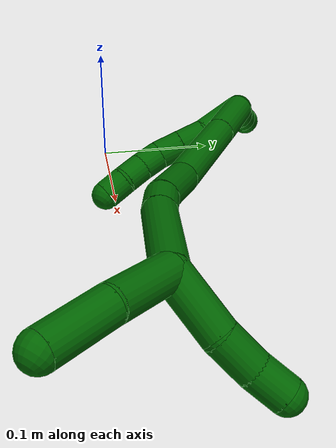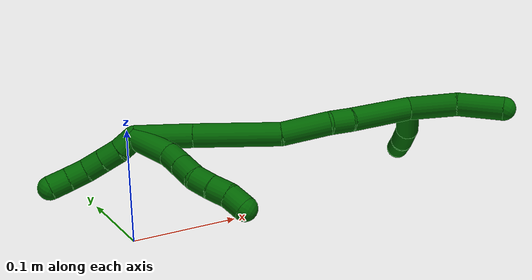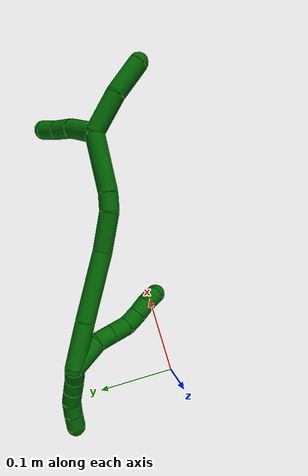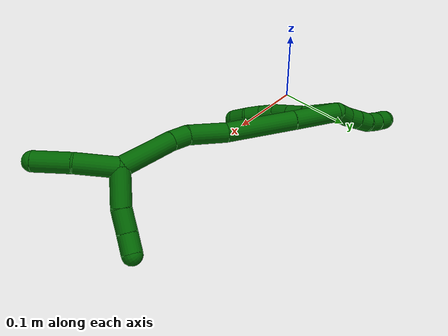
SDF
<sdf version="1.7">
 <world name="default">
  <model name="photoneo_s_sensor">
   <static>1</static>
   <pose>0 0 2 1.57079 1.57079 3.14159</pose>
   <link name="link">
    <inertial><mass>0.1</mass></inertial>
    <sensor name="sensor" type="depth">
     <update_rate>30</update_rate>
     <camera>
      <horizontal_fov>1.22</horizontal_fov>
      <image><width>1920</width><height>1200</height><format>B8G8R8</format></image>
      <clip><near>0.1</near><far>4</far></clip>
      <depth_camera><output>points</output></depth_camera>
     </camera>
     <plugin name="camera_plugin" filename="libgazebo_ros_depth_camera.so">
      <baseline>0.2</baseline>
      <alwaysOn>1</alwaysOn>
      <updateRate>0.0</updateRate>
      <cameraName>camera_ir</cameraName>
      <imageTopicName>/camera/color/image_raw</imageTopicName>
      <cameraInfoTopicName>/camera/color/camera_info</cameraInfoTopicName>
      <depthImageTopicName>/camera/depth/image_raw</depthImageTopicName>
      <depthImageCameraInfoTopicName>/camera/depth/camera_info</depthImageCameraInfoTopicName>
      <pointCloudTopicName>/camera/depth/points</pointCloudTopicName>
      <frameName>fr_optical</frameName>
      <pointCloudCutoff>0.1</pointCloudCutoff>
      <pointCloudCutoffMax>2.0</pointCloudCutoffMax>
      <distortionK1>0</distortionK1>
      <distortionK2>0</distortionK2>
      <distortionK3>0</distortionK3>
      <distortionT1>0</distortionT1>
      <distortionT2>0</distortionT2>
      <CxPrime>0</CxPrime>
      <Cx>0</Cx>
      <Cy>0</Cy>
      <focalLength>0</focalLength>
      <hackBaseline>0</hackBaseline>
     </plugin>
    </sensor>
   </link>
  </model>
  <model name="bin">
   <static>1</static>
   <link name="bottom">
    <collision name="collision-bottom">
     <pose>0 0 -0.01 0 -0 0</pose>
     <geometry><box><size>0.8 0.6 0.02</size></box></geometry>
     <surface>
      <friction><ode><mu>100</mu><mu2>100</mu2></ode></friction>
      <contact><collide_bitmask>65535</collide_bitmask></contact>
     </surface>
    </collision>
   </link>
   <link name="west_wall">
    <collision name="collision-west_wall">
     <pose>-0.41 0 0.1 0 -0 0</pose>
     <geometry><box><size>0.02 0.6 0.2</size></box></geometry>
     <surface>
      <friction><ode><mu>100</mu><mu2>100</mu2></ode></friction>
      <contact><collide_bitmask>65535</collide_bitmask></contact>
     </surface>
    </collision>
   </link>
   <link name="east_wall">
    <collision name="collision-east_wall">
     <pose>0.41 0 0.1 0 -0 0</pose>
     <geometry><box><size>0.02 0.6 0.2</size></box></geometry>
     <surface>
      <friction><ode><mu>100</mu><mu2>100</mu2></ode></friction>
      <contact><collide_bitmask>65535</collide_bitmask></contact>
     </surface>
    </collision>
   </link>
   <link name="south_wall">
    <collision name="collision-south_wall">
     <pose>0 -0.31 0.1 0 -0 0</pose>
     <geometry><box><size>0.8 0.02 0.2</size></box></geometry>
     <surface>
      <friction><ode><mu>100</mu><mu2>100</mu2></ode></friction>
      <contact><collide_bitmask>65535</collide_bitmask></contact>
     </surface>
    </collision>
   </link>
   <link name="north_wall">
    <collision name="collision-north_wall">
     <pose>0 0.31 0.1 0 -0 0</pose>
     <geometry><box><size>0.8 0.02 0.2</size></box></geometry>
     <surface>
      <friction><ode><mu>100</mu><mu2>100</mu2></ode></friction>
      <contact><collide_bitmask>65535</collide_bitmask></contact>
     </surface>
    </collision>
   </link>
  </model>
  <model name="6">
   <static>0</static>
   <link name="6">
    <collision name="collision-cylinder-e_1_2_8">
     <pose>-0.0062 -0.003976 -0.02101 2.95454 -0.282224 -1.97443</pose>
     <geometry><cylinder><radius>0.0125</radius><length>0.044527</length></cylinder></geometry>
     <surface>
      <friction><ode><mu>1.16</mu><mu2>1.16</mu2><slip1>0</slip1><slip2>0</slip2></ode></friction>
      <contact><ode><kp>1e+06</kp><kd>1</kd><max_vel>0</max_vel><min_depth>0.001</min_depth></ode></contact>
     </surface>
    </collision>
    <visual name="visual-cylinder-e_1_2_8">
     <pose>-0.0062 -0.003976 -0.02101 2.95454 -0.282224 -1.97443</pose>
     <geometry><cylinder><radius>0.0125</radius><length>0.044527</length></cylinder></geometry>
     <material><ambient>0 0.392157 0.003922 1</ambient></material>
    </visual>
    <collision name="collision-cylinder-e_2_8_9">
     <pose>-0.018679 -0.008261 -0.051294 3.10836 -0.594838 -3.03326</pose>
     <geometry><cylinder><radius>0.0125</radius><length>0.022408</length></cylinder></geometry>
     <surface>
      <friction><ode><mu>1.16</mu><mu2>1.16</mu2><slip1>0</slip1><slip2>0</slip2></ode></friction>
      <contact><ode><kp>1e+06</kp><kd>1</kd><max_vel>0</max_vel><min_depth>0.001</min_depth></ode></contact>
     </surface>
    </collision>
    <visual name="visual-cylinder-e_2_8_9">
     <pose>-0.018679 -0.008261 -0.051294 3.10836 -0.594838 -3.03326</pose>
     <geometry><cylinder><radius>0.0125</radius><length>0.022408</length></cylinder></geometry>
     <material><ambient>0 0.392157 0.003922 1</ambient></material>
    </visual>
    <collision name="collision-cylinder-e_3_9_10">
     <pose>-0.03132 -0.008812 -0.069853 3.11549 -0.600609 -3.05734</pose>
     <geometry><cylinder><radius>0.0125</radius><length>0.022516</length></cylinder></geometry>
     <surface>
      <friction><ode><mu>1.16</mu><mu2>1.16</mu2><slip1>0</slip1><slip2>0</slip2></ode></friction>
      <contact><ode><kp>1e+06</kp><kd>1</kd><max_vel>0</max_vel><min_depth>0.001</min_depth></ode></contact>
     </surface>
    </collision>
    <visual name="visual-cylinder-e_3_9_10">
     <pose>-0.03132 -0.008812 -0.069853 3.11549 -0.600609 -3.05734</pose>
     <geometry><cylinder><radius>0.0125</radius><length>0.022516</length></cylinder></geometry>
     <material><ambient>0 0.392157 0.003922 1</ambient></material>
    </visual>
    <collision name="collision-cylinder-e_4_10_11">
     <pose>-0.040902 -0.010504 -0.088634 2.99008 -0.32343 -2.27063</pose>
     <geometry><cylinder><radius>0.0125</radius><length>0.020262</length></cylinder></geometry>
     <surface>
      <friction><ode><mu>1.16</mu><mu2>1.16</mu2><slip1>0</slip1><slip2>0</slip2></ode></friction>
      <contact><ode><kp>1e+06</kp><kd>1</kd><max_vel>0</max_vel><min_depth>0.001</min_depth></ode></contact>
     </surface>
    </collision>
    <visual name="visual-cylinder-e_4_10_11">
     <pose>-0.040902 -0.010504 -0.088634 2.99008 -0.32343 -2.27063</pose>
     <geometry><cylinder><radius>0.0125</radius><length>0.020262</length></cylinder></geometry>
     <material><ambient>0 0.392157 0.003922 1</ambient></material>
    </visual>
    <collision name="collision-cylinder-e_5_11_12">
     <pose>-0.046431 -0.013773 -0.107702 2.95377 -0.232698 -1.78496</pose>
     <geometry><cylinder><radius>0.0125</radius><length>0.020027</length></cylinder></geometry>
     <surface>
      <friction><ode><mu>1.16</mu><mu2>1.16</mu2><slip1>0</slip1><slip2>0</slip2></ode></friction>
      <contact><ode><kp>1e+06</kp><kd>1</kd><max_vel>0</max_vel><min_depth>0.001</min_depth></ode></contact>
     </surface>
    </collision>
    <visual name="visual-cylinder-e_5_11_12">
     <pose>-0.046431 -0.013773 -0.107702 2.95377 -0.232698 -1.78496</pose>
     <geometry><cylinder><radius>0.0125</radius><length>0.020027</length></cylinder></geometry>
     <material><ambient>0 0.392157 0.003922 1</ambient></material>
    </visual>
    <collision name="collision-cylinder-e_6_12_6">
     <pose>-0.05223 -0.015246 -0.126777 -3.10516 -0.351767 2.9373</pose>
     <geometry><cylinder><radius>0.0125</radius><length>0.02026</length></cylinder></geometry>
     <surface>
      <friction><ode><mu>1.16</mu><mu2>1.16</mu2><slip1>0</slip1><slip2>0</slip2></ode></friction>
      <contact><ode><kp>1e+06</kp><kd>1</kd><max_vel>0</max_vel><min_depth>0.001</min_depth></ode></contact>
     </surface>
    </collision>
    <visual name="visual-cylinder-e_6_12_6">
     <pose>-0.05223 -0.015246 -0.126777 -3.10516 -0.351767 2.9373</pose>
     <geometry><cylinder><radius>0.0125</radius><length>0.02026</length></cylinder></geometry>
     <material><ambient>0 0.392157 0.003922 1</ambient></material>
    </visual>
    <collision name="collision-cylinder-e_1_2_13">
     <pose>-0.002 0.009337 0.002971 -1.26269 -0.201366 0.147466</pose>
     <geometry><cylinder><radius>0.0125</radius><length>0.02</length></cylinder></geometry>
     <surface>
      <friction><ode><mu>1.16</mu><mu2>1.16</mu2><slip1>0</slip1><slip2>0</slip2></ode></friction>
      <contact><ode><kp>1e+06</kp><kd>1</kd><max_vel>0</max_vel><min_depth>0.001</min_depth></ode></contact>
     </surface>
    </collision>
    <visual name="visual-cylinder-e_1_2_13">
     <pose>-0.002 0.009337 0.002971 -1.26269 -0.201366 0.147466</pose>
     <geometry><cylinder><radius>0.0125</radius><length>0.02</length></cylinder></geometry>
     <material><ambient>0 0.392157 0.003922 1</ambient></material>
    </visual>
    <collision name="collision-cylinder-e_2_13_14">
     <pose>-0.005597 0.027388 0.01058 -1.0818 -0.160362 0.096453</pose>
     <geometry><cylinder><radius>0.0125</radius><length>0.02</length></cylinder></geometry>
     <surface>
      <friction><ode><mu>1.16</mu><mu2>1.16</mu2><slip1>0</slip1><slip2>0</slip2></ode></friction>
      <contact><ode><kp>1e+06</kp><kd>1</kd><max_vel>0</max_vel><min_depth>0.001</min_depth></ode></contact>
     </surface>
    </collision>
    <visual name="visual-cylinder-e_2_13_14">
     <pose>-0.005597 0.027388 0.01058 -1.0818 -0.160362 0.096453</pose>
     <geometry><cylinder><radius>0.0125</radius><length>0.02</length></cylinder></geometry>
     <material><ambient>0 0.392157 0.003922 1</ambient></material>
    </visual>
    <collision name="collision-cylinder-e_3_14_15">
     <pose>-0.008827 0.044796 0.019882 -1.07829 -0.164061 0.098293</pose>
     <geometry><cylinder><radius>0.0125</radius><length>0.02</length></cylinder></geometry>
     <surface>
      <friction><ode><mu>1.16</mu><mu2>1.16</mu2><slip1>0</slip1><slip2>0</slip2></ode></friction>
      <contact><ode><kp>1e+06</kp><kd>1</kd><max_vel>0</max_vel><min_depth>0.001</min_depth></ode></contact>
     </surface>
    </collision>
    <visual name="visual-cylinder-e_3_14_15">
     <pose>-0.008827 0.044796 0.019882 -1.07829 -0.164061 0.098293</pose>
     <geometry><cylinder><radius>0.0125</radius><length>0.02</length></cylinder></geometry>
     <material><ambient>0 0.392157 0.003922 1</ambient></material>
    </visual>
    <collision name="collision-cylinder-e_4_15_16">
     <pose>-0.014572 0.061166 0.029462 -1.0013 -0.423754 0.234311</pose>
     <geometry><cylinder><radius>0.0125</radius><length>0.02</length></cylinder></geometry>
     <surface>
      <friction><ode><mu>1.16</mu><mu2>1.16</mu2><slip1>0</slip1><slip2>0</slip2></ode></friction>
      <contact><ode><kp>1e+06</kp><kd>1</kd><max_vel>0</max_vel><min_depth>0.001</min_depth></ode></contact>
     </surface>
    </collision>
    <visual name="visual-cylinder-e_4_15_16">
     <pose>-0.014572 0.061166 0.029462 -1.0013 -0.423754 0.234311</pose>
     <geometry><cylinder><radius>0.0125</radius><length>0.02</length></cylinder></geometry>
     <material><ambient>0 0.392157 0.003922 1</ambient></material>
    </visual>
    <collision name="collision-cylinder-e_5_16_5">
     <pose>-0.023495 0.076064 0.039347 -0.967965 -0.501903 0.26791</pose>
     <geometry><cylinder><radius>0.0125</radius><length>0.02</length></cylinder></geometry>
     <surface>
      <friction><ode><mu>1.16</mu><mu2>1.16</mu2><slip1>0</slip1><slip2>0</slip2></ode></friction>
      <contact><ode><kp>1e+06</kp><kd>1</kd><max_vel>0</max_vel><min_depth>0.001</min_depth></ode></contact>
     </surface>
    </collision>
    <visual name="visual-cylinder-e_5_16_5">
     <pose>-0.023495 0.076064 0.039347 -0.967965 -0.501903 0.26791</pose>
     <geometry><cylinder><radius>0.0125</radius><length>0.02</length></cylinder></geometry>
     <material><ambient>0 0.392157 0.003922 1</ambient></material>
    </visual>
    <collision name="collision-cylinder-e_1_2_17">
     <pose>0.005493 -0.015639 -0.025008 2.58274 0.184112 0.62255</pose>
     <geometry><cylinder><radius>0.0125</radius><length>0.060006</length></cylinder></geometry>
     <surface>
      <friction><ode><mu>1.16</mu><mu2>1.16</mu2><slip1>0</slip1><slip2>0</slip2></ode></friction>
      <contact><ode><kp>1e+06</kp><kd>1</kd><max_vel>0</max_vel><min_depth>0.001</min_depth></ode></contact>
     </surface>
    </collision>
    <visual name="visual-cylinder-e_1_2_17">
     <pose>0.005493 -0.015639 -0.025008 2.58274 0.184112 0.62255</pose>
     <geometry><cylinder><radius>0.0125</radius><length>0.060006</length></cylinder></geometry>
     <material><ambient>0 0.392157 0.003922 1</ambient></material>
    </visual>
    <collision name="collision-cylinder-e_2_17_18">
     <pose>0.018399 -0.054453 -0.088126 2.59524 0.1647 0.572955</pose>
     <geometry><cylinder><radius>0.0125</radius><length>0.090428</length></cylinder></geometry>
     <surface>
      <friction><ode><mu>1.16</mu><mu2>1.16</mu2><slip1>0</slip1><slip2>0</slip2></ode></friction>
      <contact><ode><kp>1e+06</kp><kd>1</kd><max_vel>0</max_vel><min_depth>0.001</min_depth></ode></contact>
     </surface>
    </collision>
    <visual name="visual-cylinder-e_2_17_18">
     <pose>0.018399 -0.054453 -0.088126 2.59524 0.1647 0.572955</pose>
     <geometry><cylinder><radius>0.0125</radius><length>0.090428</length></cylinder></geometry>
     <material><ambient>0 0.392157 0.003922 1</ambient></material>
    </visual>
    <collision name="collision-cylinder-e_3_18_19">
     <pose>0.031079 -0.09484 -0.144516 2.38627 0.206759 0.511601</pose>
     <geometry><cylinder><radius>0.0125</radius><length>0.05131</length></cylinder></geometry>
     <surface>
      <friction><ode><mu>1.16</mu><mu2>1.16</mu2><slip1>0</slip1><slip2>0</slip2></ode></friction>
      <contact><ode><kp>1e+06</kp><kd>1</kd><max_vel>0</max_vel><min_depth>0.001</min_depth></ode></contact>
     </surface>
    </collision>
    <visual name="visual-cylinder-e_3_18_19">
     <pose>0.031079 -0.09484 -0.144516 2.38627 0.206759 0.511601</pose>
     <geometry><cylinder><radius>0.0125</radius><length>0.05131</length></cylinder></geometry>
     <material><ambient>0 0.392157 0.003922 1</ambient></material>
    </visual>
    <collision name="collision-cylinder-e_4_19_20">
     <pose>0.041636 -0.118333 -0.17113 2.49574 0.469217 1.24042</pose>
     <geometry><cylinder><radius>0.0125</radius><length>0.0234</length></cylinder></geometry>
     <surface>
      <friction><ode><mu>1.16</mu><mu2>1.16</mu2><slip1>0</slip1><slip2>0</slip2></ode></friction>
      <contact><ode><kp>1e+06</kp><kd>1</kd><max_vel>0</max_vel><min_depth>0.001</min_depth></ode></contact>
     </surface>
    </collision>
    <visual name="visual-cylinder-e_4_19_20">
     <pose>0.041636 -0.118333 -0.17113 2.49574 0.469217 1.24042</pose>
     <geometry><cylinder><radius>0.0125</radius><length>0.0234</length></cylinder></geometry>
     <material><ambient>0 0.392157 0.003922 1</ambient></material>
    </visual>
    <collision name="collision-cylinder-e_5_20_1">
     <pose>0.068665 -0.143414 -0.20344 2.47664 0.61972 1.49533</pose>
     <geometry><cylinder><radius>0.0125</radius><length>0.074855</length></cylinder></geometry>
     <surface>
      <friction><ode><mu>1.16</mu><mu2>1.16</mu2><slip1>0</slip1><slip2>0</slip2></ode></friction>
      <contact><ode><kp>1e+06</kp><kd>1</kd><max_vel>0</max_vel><min_depth>0.001</min_depth></ode></contact>
     </surface>
    </collision>
    <visual name="visual-cylinder-e_5_20_1">
     <pose>0.068665 -0.143414 -0.20344 2.47664 0.61972 1.49533</pose>
     <geometry><cylinder><radius>0.0125</radius><length>0.074855</length></cylinder></geometry>
     <material><ambient>0 0.392157 0.003922 1</ambient></material>
    </visual>
    <collision name="collision-cylinder-e_1_1_21">
     <pose>0.109094 -0.15064 -0.235087 -2.15614 0.931914 -1.50541</pose>
     <geometry><cylinder><radius>0.0125</radius><length>0.046568</length></cylinder></geometry>
     <surface>
      <friction><ode><mu>1.16</mu><mu2>1.16</mu2><slip1>0</slip1><slip2>0</slip2></ode></friction>
      <contact><ode><kp>1e+06</kp><kd>1</kd><max_vel>0</max_vel><min_depth>0.001</min_depth></ode></contact>
     </surface>
    </collision>
    <visual name="visual-cylinder-e_1_1_21">
     <pose>0.109094 -0.15064 -0.235087 -2.15614 0.931914 -1.50541</pose>
     <geometry><cylinder><radius>0.0125</radius><length>0.046568</length></cylinder></geometry>
     <material><ambient>0 0.392157 0.003922 1</ambient></material>
    </visual>
    <collision name="collision-cylinder-e_2_21_22">
     <pose>0.139069 -0.130377 -0.244962 -1.81915 0.899389 -1.11051</pose>
     <geometry><cylinder><radius>0.0125</radius><length>0.028822</length></cylinder></geometry>
     <surface>
      <friction><ode><mu>1.16</mu><mu2>1.16</mu2><slip1>0</slip1><slip2>0</slip2></ode></friction>
      <contact><ode><kp>1e+06</kp><kd>1</kd><max_vel>0</max_vel><min_depth>0.001</min_depth></ode></contact>
     </surface>
    </collision>
    <visual name="visual-cylinder-e_2_21_22">
     <pose>0.139069 -0.130377 -0.244962 -1.81915 0.899389 -1.11051</pose>
     <geometry><cylinder><radius>0.0125</radius><length>0.028822</length></cylinder></geometry>
     <material><ambient>0 0.392157 0.003922 1</ambient></material>
    </visual>
    <collision name="collision-cylinder-e_3_22_4">
     <pose>0.16105 -0.115714 -0.248302 -1.75878 1.05397 -1.22547</pose>
     <geometry><cylinder><radius>0.0125</radius><length>0.02461</length></cylinder></geometry>
     <surface>
      <friction><ode><mu>1.16</mu><mu2>1.16</mu2><slip1>0</slip1><slip2>0</slip2></ode></friction>
      <contact><ode><kp>1e+06</kp><kd>1</kd><max_vel>0</max_vel><min_depth>0.001</min_depth></ode></contact>
     </surface>
    </collision>
    <visual name="visual-cylinder-e_3_22_4">
     <pose>0.16105 -0.115714 -0.248302 -1.75878 1.05397 -1.22547</pose>
     <geometry><cylinder><radius>0.0125</radius><length>0.02461</length></cylinder></geometry>
     <material><ambient>0 0.392157 0.003922 1</ambient></material>
    </visual>
    <collision name="collision-cylinder-e_1_1_23">
     <pose>0.087221 -0.178021 -0.248186 2.49102 -0.121323 -0.356349</pose>
     <geometry><cylinder><radius>0.0125</radius><length>0.052589</length></cylinder></geometry>
     <surface>
      <friction><ode><mu>1.16</mu><mu2>1.16</mu2><slip1>0</slip1><slip2>0</slip2></ode></friction>
      <contact><ode><kp>1e+06</kp><kd>1</kd><max_vel>0</max_vel><min_depth>0.001</min_depth></ode></contact>
     </surface>
    </collision>
    <visual name="visual-cylinder-e_1_1_23">
     <pose>0.087221 -0.178021 -0.248186 2.49102 -0.121323 -0.356349</pose>
     <geometry><cylinder><radius>0.0125</radius><length>0.052589</length></cylinder></geometry>
     <material><ambient>0 0.392157 0.003922 1</ambient></material>
    </visual>
    <collision name="collision-cylinder-e_2_23_3">
     <pose>0.079125 -0.204322 -0.289637 2.67205 -0.208767 -0.825678</pose>
     <geometry><cylinder><radius>0.0125</radius><length>0.047411</length></cylinder></geometry>
     <surface>
      <friction><ode><mu>1.16</mu><mu2>1.16</mu2><slip1>0</slip1><slip2>0</slip2></ode></friction>
      <contact><ode><kp>1e+06</kp><kd>1</kd><max_vel>0</max_vel><min_depth>0.001</min_depth></ode></contact>
     </surface>
    </collision>
    <visual name="visual-cylinder-e_2_23_3">
     <pose>0.079125 -0.204322 -0.289637 2.67205 -0.208767 -0.825678</pose>
     <geometry><cylinder><radius>0.0125</radius><length>0.047411</length></cylinder></geometry>
     <material><ambient>0 0.392157 0.003922 1</ambient></material>
    </visual>
    <collision name="collision-sphere-3">
     <pose>0.074212 -0.214815 -0.310318 0 -0 0</pose>
     <geometry><sphere><radius>0.0125</radius></sphere></geometry>
     <surface>
      <friction><ode><mu>1.16</mu><mu2>1.16</mu2><slip1>0</slip1><slip2>0</slip2></ode></friction>
      <contact><ode><kp>1e+06</kp><kd>1</kd><max_vel>0</max_vel><min_depth>0.001</min_depth></ode></contact>
     </surface>
    </collision>
    <visual name="visual-sphere-3">
     <pose>0.074212 -0.214815 -0.310318 0 -0 0</pose>
     <geometry><sphere><radius>0.0125</radius></sphere></geometry>
     <material><ambient>0 0.392157 0.003922 1</ambient></material>
    </visual>
    <collision name="collision-sphere-23">
     <pose>0.084038 -0.193829 -0.268956 0 -0 0</pose>
     <geometry><sphere><radius>0.0125</radius></sphere></geometry>
     <surface>
      <friction><ode><mu>1.16</mu><mu2>1.16</mu2><slip1>0</slip1><slip2>0</slip2></ode></friction>
      <contact><ode><kp>1e+06</kp><kd>1</kd><max_vel>0</max_vel><min_depth>0.001</min_depth></ode></contact>
     </surface>
    </collision>
    <visual name="visual-sphere-23">
     <pose>0.084038 -0.193829 -0.268956 0 -0 0</pose>
     <geometry><sphere><radius>0.0125</radius></sphere></geometry>
     <material><ambient>0 0.392157 0.003922 1</ambient></material>
    </visual>
    <collision name="collision-sphere-4">
     <pose>0.171748 -0.109741 -0.249438 0 -0 0</pose>
     <geometry><sphere><radius>0.0125</radius></sphere></geometry>
     <surface>
      <friction><ode><mu>1.16</mu><mu2>1.16</mu2><slip1>0</slip1><slip2>0</slip2></ode></friction>
      <contact><ode><kp>1e+06</kp><kd>1</kd><max_vel>0</max_vel><min_depth>0.001</min_depth></ode></contact>
     </surface>
    </collision>
    <visual name="visual-sphere-4">
     <pose>0.171748 -0.109741 -0.249438 0 -0 0</pose>
     <geometry><sphere><radius>0.0125</radius></sphere></geometry>
     <material><ambient>0 0.392157 0.003922 1</ambient></material>
    </visual>
    <collision name="collision-sphere-22">
     <pose>0.150352 -0.121687 -0.247165 0 -0 0</pose>
     <geometry><sphere><radius>0.0125</radius></sphere></geometry>
     <surface>
      <friction><ode><mu>1.16</mu><mu2>1.16</mu2><slip1>0</slip1><slip2>0</slip2></ode></friction>
      <contact><ode><kp>1e+06</kp><kd>1</kd><max_vel>0</max_vel><min_depth>0.001</min_depth></ode></contact>
     </surface>
    </collision>
    <visual name="visual-sphere-22">
     <pose>0.150352 -0.121687 -0.247165 0 -0 0</pose>
     <geometry><sphere><radius>0.0125</radius></sphere></geometry>
     <material><ambient>0 0.392157 0.003922 1</ambient></material>
    </visual>
    <collision name="collision-sphere-21">
     <pose>0.127786 -0.139067 -0.242758 0 -0 0</pose>
     <geometry><sphere><radius>0.0125</radius></sphere></geometry>
     <surface>
      <friction><ode><mu>1.16</mu><mu2>1.16</mu2><slip1>0</slip1><slip2>0</slip2></ode></friction>
      <contact><ode><kp>1e+06</kp><kd>1</kd><max_vel>0</max_vel><min_depth>0.001</min_depth></ode></contact>
     </surface>
    </collision>
    <visual name="visual-sphere-21">
     <pose>0.127786 -0.139067 -0.242758 0 -0 0</pose>
     <geometry><sphere><radius>0.0125</radius></sphere></geometry>
     <material><ambient>0 0.392157 0.003922 1</ambient></material>
    </visual>
    <collision name="collision-sphere-1">
     <pose>0.090403 -0.162213 -0.227417 0 -0 0</pose>
     <geometry><sphere><radius>0.0125</radius></sphere></geometry>
     <surface>
      <friction><ode><mu>1.16</mu><mu2>1.16</mu2><slip1>0</slip1><slip2>0</slip2></ode></friction>
      <contact><ode><kp>1e+06</kp><kd>1</kd><max_vel>0</max_vel><min_depth>0.001</min_depth></ode></contact>
     </surface>
    </collision>
    <visual name="visual-sphere-1">
     <pose>0.090403 -0.162213 -0.227417 0 -0 0</pose>
     <geometry><sphere><radius>0.0125</radius></sphere></geometry>
     <material><ambient>0 0.392157 0.003922 1</ambient></material>
    </visual>
    <collision name="collision-sphere-12">
     <pose>-0.04874 -0.015593 -0.117274 0 -0 0</pose>
     <geometry><sphere><radius>0.0125</radius></sphere></geometry>
     <surface>
      <friction><ode><mu>1.16</mu><mu2>1.16</mu2><slip1>0</slip1><slip2>0</slip2></ode></friction>
      <contact><ode><kp>1e+06</kp><kd>1</kd><max_vel>0</max_vel><min_depth>0.001</min_depth></ode></contact>
     </surface>
    </collision>
    <visual name="visual-sphere-12">
     <pose>-0.04874 -0.015593 -0.117274 0 -0 0</pose>
     <geometry><sphere><radius>0.0125</radius></sphere></geometry>
     <material><ambient>0 0.392157 0.003922 1</ambient></material>
    </visual>
    <collision name="collision-sphere-11">
     <pose>-0.044122 -0.011954 -0.098129 0 -0 0</pose>
     <geometry><sphere><radius>0.0125</radius></sphere></geometry>
     <surface>
      <friction><ode><mu>1.16</mu><mu2>1.16</mu2><slip1>0</slip1><slip2>0</slip2></ode></friction>
      <contact><ode><kp>1e+06</kp><kd>1</kd><max_vel>0</max_vel><min_depth>0.001</min_depth></ode></contact>
     </surface>
    </collision>
    <visual name="visual-sphere-11">
     <pose>-0.044122 -0.011954 -0.098129 0 -0 0</pose>
     <geometry><sphere><radius>0.0125</radius></sphere></geometry>
     <material><ambient>0 0.392157 0.003922 1</ambient></material>
    </visual>
    <collision name="collision-sphere-10">
     <pose>-0.037682 -0.009054 -0.079138 0 -0 0</pose>
     <geometry><sphere><radius>0.0125</radius></sphere></geometry>
     <surface>
      <friction><ode><mu>1.16</mu><mu2>1.16</mu2><slip1>0</slip1><slip2>0</slip2></ode></friction>
      <contact><ode><kp>1e+06</kp><kd>1</kd><max_vel>0</max_vel><min_depth>0.001</min_depth></ode></contact>
     </surface>
    </collision>
    <visual name="visual-sphere-10">
     <pose>-0.037682 -0.009054 -0.079138 0 -0 0</pose>
     <geometry><sphere><radius>0.0125</radius></sphere></geometry>
     <material><ambient>0 0.392157 0.003922 1</ambient></material>
    </visual>
    <collision name="collision-sphere-9">
     <pose>-0.024957 -0.008569 -0.060568 0 -0 0</pose>
     <geometry><sphere><radius>0.0125</radius></sphere></geometry>
     <surface>
      <friction><ode><mu>1.16</mu><mu2>1.16</mu2><slip1>0</slip1><slip2>0</slip2></ode></friction>
      <contact><ode><kp>1e+06</kp><kd>1</kd><max_vel>0</max_vel><min_depth>0.001</min_depth></ode></contact>
     </surface>
    </collision>
    <visual name="visual-sphere-9">
     <pose>-0.024957 -0.008569 -0.060568 0 -0 0</pose>
     <geometry><sphere><radius>0.0125</radius></sphere></geometry>
     <material><ambient>0 0.392157 0.003922 1</ambient></material>
    </visual>
    <collision name="collision-sphere-2">
     <geometry><sphere><radius>0.0125</radius></sphere></geometry>
     <surface>
      <friction><ode><mu>1.16</mu><mu2>1.16</mu2><slip1>0</slip1><slip2>0</slip2></ode></friction>
      <contact><ode><kp>1e+06</kp><kd>1</kd><max_vel>0</max_vel><min_depth>0.001</min_depth></ode></contact>
     </surface>
    </collision>
    <visual name="visual-sphere-2">
     <geometry><sphere><radius>0.0125</radius></sphere></geometry>
     <material><ambient>0 0.392157 0.003922 1</ambient></material>
    </visual>
    <collision name="collision-sphere-19">
     <pose>0.036345 -0.112053 -0.162797 0 -0 0</pose>
     <geometry><sphere><radius>0.0125</radius></sphere></geometry>
     <surface>
      <friction><ode><mu>1.16</mu><mu2>1.16</mu2><slip1>0</slip1><slip2>0</slip2></ode></friction>
      <contact><ode><kp>1e+06</kp><kd>1</kd><max_vel>0</max_vel><min_depth>0.001</min_depth></ode></contact>
     </surface>
    </collision>
    <visual name="visual-sphere-19">
     <pose>0.036345 -0.112053 -0.162797 0 -0 0</pose>
     <geometry><sphere><radius>0.0125</radius></sphere></geometry>
     <material><ambient>0 0.392157 0.003922 1</ambient></material>
    </visual>
    <collision name="collision-sphere-8">
     <pose>-0.0124 -0.007953 -0.04202 0 -0 0</pose>
     <geometry><sphere><radius>0.0125</radius></sphere></geometry>
     <surface>
      <friction><ode><mu>1.16</mu><mu2>1.16</mu2><slip1>0</slip1><slip2>0</slip2></ode></friction>
      <contact><ode><kp>1e+06</kp><kd>1</kd><max_vel>0</max_vel><min_depth>0.001</min_depth></ode></contact>
     </surface>
    </collision>
    <visual name="visual-sphere-8">
     <pose>-0.0124 -0.007953 -0.04202 0 -0 0</pose>
     <geometry><sphere><radius>0.0125</radius></sphere></geometry>
     <material><ambient>0 0.392157 0.003922 1</ambient></material>
    </visual>
    <collision name="collision-sphere-6">
     <pose>-0.055721 -0.0149 -0.13628 0 -0 0</pose>
     <geometry><sphere><radius>0.0125</radius></sphere></geometry>
     <surface>
      <friction><ode><mu>1.16</mu><mu2>1.16</mu2><slip1>0</slip1><slip2>0</slip2></ode></friction>
      <contact><ode><kp>1e+06</kp><kd>1</kd><max_vel>0</max_vel><min_depth>0.001</min_depth></ode></contact>
     </surface>
    </collision>
    <visual name="visual-sphere-6">
     <pose>-0.055721 -0.0149 -0.13628 0 -0 0</pose>
     <geometry><sphere><radius>0.0125</radius></sphere></geometry>
     <material><ambient>0 0.392157 0.003922 1</ambient></material>
    </visual>
    <collision name="collision-sphere-13">
     <pose>-0.004 0.018673 0.005943 0 -0 0</pose>
     <geometry><sphere><radius>0.0125</radius></sphere></geometry>
     <surface>
      <friction><ode><mu>1.16</mu><mu2>1.16</mu2><slip1>0</slip1><slip2>0</slip2></ode></friction>
      <contact><ode><kp>1e+06</kp><kd>1</kd><max_vel>0</max_vel><min_depth>0.001</min_depth></ode></contact>
     </surface>
    </collision>
    <visual name="visual-sphere-13">
     <pose>-0.004 0.018673 0.005943 0 -0 0</pose>
     <geometry><sphere><radius>0.0125</radius></sphere></geometry>
     <material><ambient>0 0.392157 0.003922 1</ambient></material>
    </visual>
    <collision name="collision-sphere-14">
     <pose>-0.007194 0.036103 0.015217 0 -0 0</pose>
     <geometry><sphere><radius>0.0125</radius></sphere></geometry>
     <surface>
      <friction><ode><mu>1.16</mu><mu2>1.16</mu2><slip1>0</slip1><slip2>0</slip2></ode></friction>
      <contact><ode><kp>1e+06</kp><kd>1</kd><max_vel>0</max_vel><min_depth>0.001</min_depth></ode></contact>
     </surface>
    </collision>
    <visual name="visual-sphere-14">
     <pose>-0.007194 0.036103 0.015217 0 -0 0</pose>
     <geometry><sphere><radius>0.0125</radius></sphere></geometry>
     <material><ambient>0 0.392157 0.003922 1</ambient></material>
    </visual>
    <collision name="collision-sphere-15">
     <pose>-0.01046 0.053489 0.024547 0 -0 0</pose>
     <geometry><sphere><radius>0.0125</radius></sphere></geometry>
     <surface>
      <friction><ode><mu>1.16</mu><mu2>1.16</mu2><slip1>0</slip1><slip2>0</slip2></ode></friction>
      <contact><ode><kp>1e+06</kp><kd>1</kd><max_vel>0</max_vel><min_depth>0.001</min_depth></ode></contact>
     </surface>
    </collision>
    <visual name="visual-sphere-15">
     <pose>-0.01046 0.053489 0.024547 0 -0 0</pose>
     <geometry><sphere><radius>0.0125</radius></sphere></geometry>
     <material><ambient>0 0.392157 0.003922 1</ambient></material>
    </visual>
    <collision name="collision-sphere-16">
     <pose>-0.018684 0.068843 0.034377 0 -0 0</pose>
     <geometry><sphere><radius>0.0125</radius></sphere></geometry>
     <surface>
      <friction><ode><mu>1.16</mu><mu2>1.16</mu2><slip1>0</slip1><slip2>0</slip2></ode></friction>
      <contact><ode><kp>1e+06</kp><kd>1</kd><max_vel>0</max_vel><min_depth>0.001</min_depth></ode></contact>
     </surface>
    </collision>
    <visual name="visual-sphere-16">
     <pose>-0.018684 0.068843 0.034377 0 -0 0</pose>
     <geometry><sphere><radius>0.0125</radius></sphere></geometry>
     <material><ambient>0 0.392157 0.003922 1</ambient></material>
    </visual>
    <collision name="collision-sphere-5">
     <pose>-0.028306 0.083285 0.044318 0 -0 0</pose>
     <geometry><sphere><radius>0.0125</radius></sphere></geometry>
     <surface>
      <friction><ode><mu>1.16</mu><mu2>1.16</mu2><slip1>0</slip1><slip2>0</slip2></ode></friction>
      <contact><ode><kp>1e+06</kp><kd>1</kd><max_vel>0</max_vel><min_depth>0.001</min_depth></ode></contact>
     </surface>
    </collision>
    <visual name="visual-sphere-5">
     <pose>-0.028306 0.083285 0.044318 0 -0 0</pose>
     <geometry><sphere><radius>0.0125</radius></sphere></geometry>
     <material><ambient>0 0.392157 0.003922 1</ambient></material>
    </visual>
    <collision name="collision-sphere-17">
     <pose>0.010986 -0.031279 -0.050017 0 -0 0</pose>
     <geometry><sphere><radius>0.0125</radius></sphere></geometry>
     <surface>
      <friction><ode><mu>1.16</mu><mu2>1.16</mu2><slip1>0</slip1><slip2>0</slip2></ode></friction>
      <contact><ode><kp>1e+06</kp><kd>1</kd><max_vel>0</max_vel><min_depth>0.001</min_depth></ode></contact>
     </surface>
    </collision>
    <visual name="visual-sphere-17">
     <pose>0.010986 -0.031279 -0.050017 0 -0 0</pose>
     <geometry><sphere><radius>0.0125</radius></sphere></geometry>
     <material><ambient>0 0.392157 0.003922 1</ambient></material>
    </visual>
    <collision name="collision-sphere-18">
     <pose>0.025812 -0.077627 -0.126236 0 -0 0</pose>
     <geometry><sphere><radius>0.0125</radius></sphere></geometry>
     <surface>
      <friction><ode><mu>1.16</mu><mu2>1.16</mu2><slip1>0</slip1><slip2>0</slip2></ode></friction>
      <contact><ode><kp>1e+06</kp><kd>1</kd><max_vel>0</max_vel><min_depth>0.001</min_depth></ode></contact>
     </surface>
    </collision>
    <visual name="visual-sphere-18">
     <pose>0.025812 -0.077627 -0.126236 0 -0 0</pose>
     <geometry><sphere><radius>0.0125</radius></sphere></geometry>
     <material><ambient>0 0.392157 0.003922 1</ambient></material>
    </visual>
    <collision name="collision-sphere-20">
     <pose>0.046926 -0.124614 -0.179464 0 -0 0</pose>
     <geometry><sphere><radius>0.0125</radius></sphere></geometry>
     <surface>
      <friction><ode><mu>1.16</mu><mu2>1.16</mu2><slip1>0</slip1><slip2>0</slip2></ode></friction>
      <contact><ode><kp>1e+06</kp><kd>1</kd><max_vel>0</max_vel><min_depth>0.001</min_depth></ode></contact>
     </surface>
    </collision>
    <visual name="visual-sphere-20">
     <pose>0.046926 -0.124614 -0.179464 0 -0 0</pose>
     <geometry><sphere><radius>0.0125</radius></sphere></geometry>
     <material><ambient>0 0.392157 0.003922 1</ambient></material>
    </visual>
    <inertial>
     <pose>0.034381 -0.071848 -0.126873 0 -0 0</pose>
     <mass>0.75</mass>
     <inertia><ixx>0.000164</ixx><ixy>0</ixy><ixz>0</ixz><iyy>2e-06</iyy><iyz>0</iyz><izz>0</izz></inertia>
    </inertial>
   </link>
   <pose>0.050194 0.119785 0.059152 -1.05339 0.115778 0.87097</pose>
  </model>
 </world>
</sdf>
